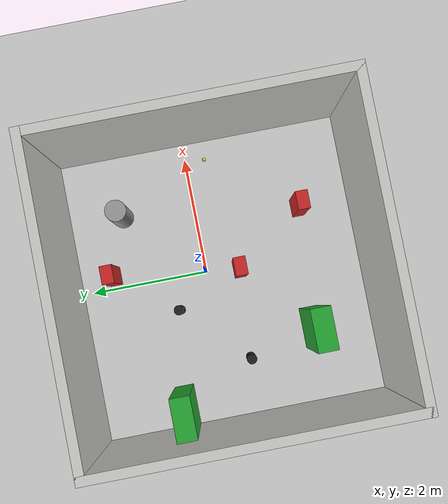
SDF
<sdf version="1.7">
 <world name="default">
  <light name="sun" type="directional">
   <pose>0 0 10 0 -0 0</pose>
   <diffuse>0.8 0.8 0.8 1</diffuse>
   <specular>0.2 0.2 0.2 1</specular>
   <attenuation>
    <range>1000</range>
    <constant>0.9</constant>
    <linear>0.01</linear>
    <quadratic>0.001</quadratic>
   </attenuation>
   <direction>-0.5 0.1 -0.9</direction>
   <spot><inner_angle>0</inner_angle><outer_angle>0</outer_angle><falloff>0</falloff></spot>
  </light>
  <model name="ground_plane">
   <static>1</static>
   <link name="link">
    <collision name="collision">
     <geometry><plane><normal>0 0 1</normal><size>100 100</size></plane></geometry>
     <surface>
      <contact><collide_bitmask>65535</collide_bitmask></contact>
      <friction><ode><mu>100</mu><mu2>50</mu2></ode></friction>
     </surface>
    </collision>
    <visual name="visual">
     <cast_shadows>0</cast_shadows>
     <geometry><plane><normal>0 0 1</normal><size>100 100</size></plane></geometry>
     <material>
      <script><uri>file://media/materials/scripts/gazebo.material</uri><name>Gazebo/Grey</name></script>
     </material>
    </visual>
   </link>
  </model>
  <gravity>0 0 -9.8</gravity>
  <magnetic_field>6e-06 2.3e-05 -4.2e-05</magnetic_field>
  <atmosphere type="adiabatic"/>
  <physics type="ode">
   <max_step_size>0.001</max_step_size>
   <real_time_factor>1</real_time_factor>
   <real_time_update_rate>1000</real_time_update_rate>
  </physics>
  <scene><ambient>0.4 0.4 0.4 1</ambient><background>0.7 0.7 0.7 1</background><shadows>1</shadows></scene>
  <audio><device>default</device></audio>
  <spherical_coordinates>
   <surface_model>EARTH_WGS84</surface_model>
   <latitude_deg>0</latitude_deg>
   <longitude_deg>0</longitude_deg>
   <elevation>0</elevation>
   <heading_deg>0</heading_deg>
  </spherical_coordinates>
  <model name="5x5_room">
   <pose>-0.145193 -0.25205 0 0 -0 0</pose>
   <link name="Wall_0">
    <collision name="Wall_0_Collision">
     <geometry><box><size>5.15 0.15 2.5</size></box></geometry>
     <pose>0 0 1.25 0 -0 0</pose>
    </collision>
    <visual name="Wall_0_Visual">
     <pose>0 0 1.25 0 -0 0</pose>
     <geometry><box><size>5.15 0.15 2.5</size></box></geometry>
     <material>
      <script><uri>file://media/materials/scripts/gazebo.material</uri><name>Gazebo/CeilingTiled</name></script>
      <ambient>1 1 1 1</ambient>
     </material>
     <meta><layer>0</layer></meta>
    </visual>
    <pose>0 -2.5 0 0 -0 3.14159</pose>
   </link>
   <link name="Wall_2">
    <collision name="Wall_2_Collision">
     <geometry><box><size>5.15 0.15 2.5</size></box></geometry>
     <pose>0 0 1.25 0 -0 0</pose>
    </collision>
    <visual name="Wall_2_Visual">
     <pose>0 0 1.25 0 -0 0</pose>
     <geometry><box><size>5.15 0.15 2.5</size></box></geometry>
     <material>
      <script><uri>file://media/materials/scripts/gazebo.material</uri><name>Gazebo/CeilingTiled</name></script>
      <ambient>1 1 1 1</ambient>
     </material>
     <meta><layer>0</layer></meta>
    </visual>
    <pose>2.5 0 0 0 -0 1.5708</pose>
   </link>
   <link name="Wall_3">
    <collision name="Wall_3_Collision">
     <geometry><box><size>5.15 0.15 2.5</size></box></geometry>
     <pose>0 0 1.25 0 -0 0</pose>
    </collision>
    <visual name="Wall_3_Visual">
     <pose>0 0 1.25 0 -0 0</pose>
     <geometry><box><size>5.15 0.15 2.5</size></box></geometry>
     <material>
      <script><uri>file://media/materials/scripts/gazebo.material</uri><name>Gazebo/CeilingTiled</name></script>
      <ambient>1 1 1 1</ambient>
     </material>
     <meta><layer>0</layer></meta>
    </visual>
    <pose>0 2.5 0 0 -0 3.14159</pose>
   </link>
   <link name="Wall_4">
    <collision name="Wall_4_Collision">
     <geometry><box><size>5.15 0.15 2.5</size></box></geometry>
     <pose>0 0 1.25 0 -0 0</pose>
    </collision>
    <visual name="Wall_4_Visual">
     <pose>0 0 1.25 0 -0 0</pose>
     <geometry><box><size>5.15 0.15 2.5</size></box></geometry>
     <material>
      <script><uri>file://media/materials/scripts/gazebo.material</uri><name>Gazebo/CeilingTiled</name></script>
      <ambient>1 1 1 1</ambient>
     </material>
     <meta><layer>0</layer></meta>
    </visual>
    <pose>-2.5 0 0 0 -0 -1.5708</pose>
   </link>
   <static>1</static>
  </model>
  <model name="yellow_ball">
   <link name="link">
    <inertial>
     <mass>1</mass>
     <inertia><ixx>0.1</ixx><ixy>0</ixy><ixz>0</ixz><iyy>0.1</iyy><iyz>0</iyz><izz>0.1</izz></inertia>
    </inertial>
    <visual name="visual">
     <geometry><sphere><radius>0.033</radius></sphere></geometry>
     <material>
      <script><name>Gazebo/Yellow</name><uri>file://media/materials/scripts/gazebo.material</uri></script>
      <shader type="pixel"><normal_map>__default__</normal_map></shader>
      <ambient>1 1 0 1</ambient>
      <diffuse>1 1 0 1</diffuse>
      <emissive>0 0 0 1</emissive>
     </material>
    </visual>
    <collision name="collision">
     <geometry><sphere><radius>0.033</radius></sphere></geometry>
     <surface>
      <friction>
       <ode><mu>1</mu><mu2>1</mu2><fdir1>0 0 0</fdir1><slip1>0</slip1><slip2>0</slip2></ode>
       <torsional>
        <coefficient>1</coefficient>
        <patch_radius>0</patch_radius>
        <surface_radius>0</surface_radius>
        <use_patch_radius>1</use_patch_radius>
        <ode><slip>0</slip></ode>
       </torsional>
      </friction>
      <bounce><restitution_coefficient>0</restitution_coefficient><threshold>1e+06</threshold></bounce>
      <contact>
       <collide_without_contact>0</collide_without_contact>
       <collide_without_contact_bitmask>1</collide_without_contact_bitmask>
       <collide_bitmask>1</collide_bitmask>
       <ode>
        <soft_cfm>0</soft_cfm>
        <soft_erp>0.2</soft_erp>
        <kp>1e+13</kp>
        <kd>1</kd>
        <max_vel>0.01</max_vel>
        <min_depth>0</min_depth>
       </ode>
       <bullet>
        <split_impulse>1</split_impulse>
        <split_impulse_penetration_threshold>-0.01</split_impulse_penetration_threshold>
        <soft_cfm>0</soft_cfm>
        <soft_erp>0.2</soft_erp>
        <kp>1e+13</kp>
        <kd>1</kd>
       </bullet>
      </contact>
     </surface>
    </collision>
   </link>
   <static>0</static>
   <pose>1.95071 -0.341292 0.033 0 -0 0</pose>
  </model>
  <model name="red_obstical_0_0">
   <link name="link_2">
    <inertial>
     <mass>100.062</mass>
     <inertia><ixx>8.68359</ixx><ixy>0</ixy><ixz>0</ixz><iyy>9.12058</iyy><iyz>0</iyz><izz>1.12713</izz></inertia>
    </inertial>
    <pose>-1.22537 -3.17223 0.5 0 -0 0</pose>
    <visual name="visual">
     <geometry><box><size>0.306249 0.203427 1</size></box></geometry>
     <material>
      <lighting>1</lighting>
      <script><uri>file://media/materials/scripts/gazebo.material</uri><name>Gazebo/Red</name></script>
      <shader type="pixel"><normal_map>__default__</normal_map></shader>
      <ambient>1 0 0 1</ambient>
      <diffuse>1 0 0 1</diffuse>
      <specular>0.1 0.1 0.1 1</specular>
      <emissive>0 0 0 1</emissive>
     </material>
    </visual>
    <collision name="collision">
     <geometry><box><size>0.306249 0.203427 1</size></box></geometry>
     <surface>
      <friction>
       <ode><mu>1</mu><mu2>1</mu2><fdir1>0 0 0</fdir1><slip1>0</slip1><slip2>0</slip2></ode>
       <torsional>
        <coefficient>1</coefficient>
        <patch_radius>0</patch_radius>
        <surface_radius>0</surface_radius>
        <use_patch_radius>1</use_patch_radius>
        <ode><slip>0</slip></ode>
       </torsional>
      </friction>
      <bounce><restitution_coefficient>0</restitution_coefficient><threshold>1e+06</threshold></bounce>
      <contact>
       <collide_without_contact>0</collide_without_contact>
       <collide_without_contact_bitmask>1</collide_without_contact_bitmask>
       <collide_bitmask>1</collide_bitmask>
       <ode>
        <soft_cfm>0</soft_cfm>
        <soft_erp>0.2</soft_erp>
        <kp>1e+13</kp>
        <kd>1</kd>
        <max_vel>0.01</max_vel>
        <min_depth>0</min_depth>
       </ode>
       <bullet>
        <split_impulse>1</split_impulse>
        <split_impulse_penetration_threshold>-0.01</split_impulse_penetration_threshold>
        <soft_cfm>0</soft_cfm>
        <soft_erp>0.2</soft_erp>
        <kp>1e+13</kp>
        <kd>1</kd>
       </bullet>
      </contact>
     </surface>
    </collision>
   </link>
   <static>0</static>
   <pose>2.03549 1.39121 -7e-06 -1e-06 3e-06 -0.001068</pose>
  </model>
  <model name="red_obstical_0_1">
   <link name="link_2">
    <inertial>
     <mass>100.062</mass>
     <inertia><ixx>8.68359</ixx><ixy>0</ixy><ixz>0</ixz><iyy>9.12058</iyy><iyz>0</iyz><izz>1.12713</izz></inertia>
    </inertial>
    <pose>-1.22537 -3.17223 0.5 0 -0 0</pose>
    <visual name="visual">
     <geometry><box><size>0.306249 0.203427 1</size></box></geometry>
     <material>
      <lighting>1</lighting>
      <script><uri>file://media/materials/scripts/gazebo.material</uri><name>Gazebo/Red</name></script>
      <shader type="pixel"><normal_map>__default__</normal_map></shader>
      <ambient>1 0 0 1</ambient>
      <diffuse>1 0 0 1</diffuse>
      <specular>0.1 0.1 0.1 1</specular>
      <emissive>0 0 0 1</emissive>
     </material>
    </visual>
    <collision name="collision">
     <geometry><box><size>0.306249 0.203427 1</size></box></geometry>
     <surface>
      <friction>
       <ode><mu>1</mu><mu2>1</mu2><fdir1>0 0 0</fdir1><slip1>0</slip1><slip2>0</slip2></ode>
       <torsional>
        <coefficient>1</coefficient>
        <patch_radius>0</patch_radius>
        <surface_radius>0</surface_radius>
        <use_patch_radius>1</use_patch_radius>
        <ode><slip>0</slip></ode>
       </torsional>
      </friction>
      <bounce><restitution_coefficient>0</restitution_coefficient><threshold>1e+06</threshold></bounce>
      <contact>
       <collide_without_contact>0</collide_without_contact>
       <collide_without_contact_bitmask>1</collide_without_contact_bitmask>
       <collide_bitmask>1</collide_bitmask>
       <ode>
        <soft_cfm>0</soft_cfm>
        <soft_erp>0.2</soft_erp>
        <kp>1e+13</kp>
        <kd>1</kd>
        <max_vel>0.01</max_vel>
        <min_depth>0</min_depth>
       </ode>
       <bullet>
        <split_impulse>1</split_impulse>
        <split_impulse_penetration_threshold>-0.01</split_impulse_penetration_threshold>
        <soft_cfm>0</soft_cfm>
        <soft_erp>0.2</soft_erp>
        <kp>1e+13</kp>
        <kd>1</kd>
       </bullet>
      </contact>
     </surface>
    </collision>
   </link>
   <static>0</static>
   <pose>1.44355 4.75053 -1e-06 1e-06 3e-06 0.000179</pose>
  </model>
  <model name="red_obstical_0_2">
   <link name="link_2">
    <inertial>
     <mass>100.062</mass>
     <inertia><ixx>8.68359</ixx><ixy>0</ixy><ixz>0</ixz><iyy>9.12058</iyy><iyz>0</iyz><izz>1.12713</izz></inertia>
    </inertial>
    <pose>-1.22537 -3.17223 0.5 0 -0 0</pose>
    <visual name="visual">
     <geometry><box><size>0.306249 0.203427 1</size></box></geometry>
     <material>
      <lighting>1</lighting>
      <script><uri>file://media/materials/scripts/gazebo.material</uri><name>Gazebo/Red</name></script>
      <shader type="pixel"><normal_map>__default__</normal_map></shader>
      <ambient>1 0 0 1</ambient>
      <diffuse>1 0 0 1</diffuse>
      <specular>0.1 0.1 0.1 1</specular>
      <emissive>0 0 0 1</emissive>
     </material>
    </visual>
    <collision name="collision">
     <geometry><box><size>0.306249 0.203427 1</size></box></geometry>
     <surface>
      <friction>
       <ode><mu>1</mu><mu2>1</mu2><fdir1>0 0 0</fdir1><slip1>0</slip1><slip2>0</slip2></ode>
       <torsional>
        <coefficient>1</coefficient>
        <patch_radius>0</patch_radius>
        <surface_radius>0</surface_radius>
        <use_patch_radius>1</use_patch_radius>
        <ode><slip>0</slip></ode>
       </torsional>
      </friction>
      <bounce><restitution_coefficient>0</restitution_coefficient><threshold>1e+06</threshold></bounce>
      <contact>
       <collide_without_contact>0</collide_without_contact>
       <collide_without_contact_bitmask>1</collide_without_contact_bitmask>
       <collide_bitmask>1</collide_bitmask>
       <ode>
        <soft_cfm>0</soft_cfm>
        <soft_erp>0.2</soft_erp>
        <kp>1e+13</kp>
        <kd>1</kd>
        <max_vel>0.01</max_vel>
        <min_depth>0</min_depth>
       </ode>
       <bullet>
        <split_impulse>1</split_impulse>
        <split_impulse_penetration_threshold>-0.01</split_impulse_penetration_threshold>
        <soft_cfm>0</soft_cfm>
        <soft_erp>0.2</soft_erp>
        <kp>1e+13</kp>
        <kd>1</kd>
       </bullet>
      </contact>
     </surface>
    </collision>
   </link>
   <static>0</static>
   <pose>1.16375 2.5944 1.4e-05 3e-06 -3e-06 0.00102</pose>
  </model>
  <model name="green_obstical">
   <link name="link_1">
    <inertial>
     <mass>100.358</mass>
     <inertia><ixx>21.465</ixx><ixy>0</ixy><ixz>0</ixz><iyy>24.5919</iyy><iyz>0</iyz><izz>4.93873</izz></inertia>
    </inertial>
    <pose>-0.043498 0.071692 -0 0 -0 0</pose>
    <visual name="visual">
     <geometry><box><size>0.694411 0.329127 1.56789</size></box></geometry>
     <material>
      <lighting>1</lighting>
      <script><uri>file://media/materials/scripts/gazebo.material</uri><name>Gazebo/Green</name></script>
      <shader type="pixel"><normal_map>__default__</normal_map></shader>
      <ambient>0 1 0 1</ambient>
      <diffuse>0 1 0 1</diffuse>
      <specular>0.1 0.1 0.1 1</specular>
      <emissive>0 0 0 1</emissive>
     </material>
    </visual>
    <collision name="collision">
     <geometry><box><size>0.694411 0.329127 1.56789</size></box></geometry>
     <surface>
      <friction>
       <ode><mu>1</mu><mu2>1</mu2><fdir1>0 0 0</fdir1><slip1>0</slip1><slip2>0</slip2></ode>
       <torsional>
        <coefficient>1</coefficient>
        <patch_radius>0</patch_radius>
        <surface_radius>0</surface_radius>
        <use_patch_radius>1</use_patch_radius>
        <ode><slip>0</slip></ode>
       </torsional>
      </friction>
      <bounce><restitution_coefficient>0</restitution_coefficient><threshold>1e+06</threshold></bounce>
      <contact>
       <collide_without_contact>0</collide_without_contact>
       <collide_without_contact_bitmask>1</collide_without_contact_bitmask>
       <collide_bitmask>1</collide_bitmask>
       <ode>
        <soft_cfm>0</soft_cfm>
        <soft_erp>0.2</soft_erp>
        <kp>1e+13</kp>
        <kd>1</kd>
        <max_vel>0.01</max_vel>
        <min_depth>0</min_depth>
       </ode>
       <bullet>
        <split_impulse>1</split_impulse>
        <split_impulse_penetration_threshold>-0.01</split_impulse_penetration_threshold>
        <soft_cfm>0</soft_cfm>
        <soft_erp>0.2</soft_erp>
        <kp>1e+13</kp>
        <kd>1</kd>
       </bullet>
      </contact>
     </surface>
    </collision>
   </link>
   <static>0</static>
   <pose>-1.24629 -1.70808 0.783944 2e-06 -3e-06 -0.000435</pose>
  </model>
  <model name="green_obstical_0">
   <link name="link_1">
    <inertial>
     <mass>100.358</mass>
     <inertia><ixx>21.465</ixx><ixy>0</ixy><ixz>0</ixz><iyy>24.5919</iyy><iyz>0</iyz><izz>4.93873</izz></inertia>
    </inertial>
    <pose>-0.043498 0.071692 -0 0 -0 0</pose>
    <visual name="visual">
     <geometry><box><size>0.694411 0.329127 1.56789</size></box></geometry>
     <material>
      <lighting>1</lighting>
      <script><uri>file://media/materials/scripts/gazebo.material</uri><name>Gazebo/Green</name></script>
      <shader type="pixel"><normal_map>__default__</normal_map></shader>
      <ambient>0 1 0 1</ambient>
      <diffuse>0 1 0 1</diffuse>
      <specular>0.1 0.1 0.1 1</specular>
      <emissive>0 0 0 1</emissive>
     </material>
    </visual>
    <collision name="collision">
     <geometry><box><size>0.694411 0.329127 1.56789</size></box></geometry>
     <surface>
      <friction>
       <ode><mu>1</mu><mu2>1</mu2><fdir1>0 0 0</fdir1><slip1>0</slip1><slip2>0</slip2></ode>
       <torsional>
        <coefficient>1</coefficient>
        <patch_radius>0</patch_radius>
        <surface_radius>0</surface_radius>
        <use_patch_radius>1</use_patch_radius>
        <ode><slip>0</slip></ode>
       </torsional>
      </friction>
      <bounce><restitution_coefficient>0</restitution_coefficient><threshold>1e+06</threshold></bounce>
      <contact>
       <collide_without_contact>0</collide_without_contact>
       <collide_without_contact_bitmask>1</collide_without_contact_bitmask>
       <collide_bitmask>1</collide_bitmask>
       <ode>
        <soft_cfm>0</soft_cfm>
        <soft_erp>0.2</soft_erp>
        <kp>1e+13</kp>
        <kd>1</kd>
        <max_vel>0.01</max_vel>
        <min_depth>0</min_depth>
       </ode>
       <bullet>
        <split_impulse>1</split_impulse>
        <split_impulse_penetration_threshold>-0.01</split_impulse_penetration_threshold>
        <soft_cfm>0</soft_cfm>
        <soft_erp>0.2</soft_erp>
        <kp>1e+13</kp>
        <kd>1</kd>
       </bullet>
      </contact>
     </surface>
    </collision>
   </link>
   <static>0</static>
   <pose>-2.17931 0.681788 0.783945 -1e-06 -0 -0.000274</pose>
  </model>
  <model name="brown_obstical">
   <link name="link_3">
    <inertial>
     <mass>100.127</mass>
     <inertia><ixx>9.13759</ixx><ixy>0</ixy><ixz>0</ixz><iyy>9.13759</iyy><iyz>0</iyz><izz>1.58737</izz></inertia>
    </inertial>
    <pose>-0.039255 -0.220189 -0 0 -0 0</pose>
    <visual name="visual">
     <geometry><cylinder><radius>0.178065</radius><length>1</length></cylinder></geometry>
     <material>
      <lighting>1</lighting>
      <script><uri>file://media/materials/scripts/gazebo.material</uri><name>Gazebo/Grey</name></script>
      <shader type="pixel"><normal_map>__default__</normal_map></shader>
      <ambient>0 0 0 1</ambient>
      <diffuse>0 0 0 1</diffuse>
      <specular>0 0 0 1</specular>
      <emissive>0 0 0 1</emissive>
     </material>
    </visual>
    <collision name="collision">
     <geometry><cylinder><radius>0.178065</radius><length>1</length></cylinder></geometry>
     <surface>
      <friction>
       <ode><mu>1</mu><mu2>1</mu2><fdir1>0 0 0</fdir1><slip1>0</slip1><slip2>0</slip2></ode>
       <torsional>
        <coefficient>1</coefficient>
        <patch_radius>0</patch_radius>
        <surface_radius>0</surface_radius>
        <use_patch_radius>1</use_patch_radius>
        <ode><slip>0</slip></ode>
       </torsional>
      </friction>
      <bounce><restitution_coefficient>0</restitution_coefficient><threshold>1e+06</threshold></bounce>
      <contact>
       <collide_without_contact>0</collide_without_contact>
       <collide_without_contact_bitmask>1</collide_without_contact_bitmask>
       <collide_bitmask>1</collide_bitmask>
       <ode>
        <soft_cfm>0</soft_cfm>
        <soft_erp>0.2</soft_erp>
        <kp>1e+13</kp>
        <kd>1</kd>
        <max_vel>0.01</max_vel>
        <min_depth>0</min_depth>
       </ode>
       <bullet>
        <split_impulse>1</split_impulse>
        <split_impulse_penetration_threshold>-0.01</split_impulse_penetration_threshold>
        <soft_cfm>0</soft_cfm>
        <soft_erp>0.2</soft_erp>
        <kp>1e+13</kp>
        <kd>1</kd>
       </bullet>
      </contact>
     </surface>
    </collision>
   </link>
   <static>0</static>
   <pose>1.25026 1.46482 0.499999 0 -0 1e-06</pose>
  </model>
  <model name="black_obstical">
   <link name="link_4">
    <inertial>
     <mass>100.017</mass>
     <inertia><ixx>3.38827</ixx><ixy>0</ixy><ixz>0</ixz><iyy>3.38827</iyy><iyz>0</iyz><izz>0.335387</izz></inertia>
    </inertial>
    <pose>-1.13449 -3.02892 0.5 0 -0 0</pose>
    <visual name="visual">
     <geometry><cylinder><radius>0.0818937</radius><length>0.621615</length></cylinder></geometry>
     <material>
      <lighting>1</lighting>
      <script><uri>file://media/materials/scripts/gazebo.material</uri><name>Gazebo/Black</name></script>
      <shader type="pixel"><normal_map>__default__</normal_map></shader>
      <ambient>0 0 0 1</ambient>
      <diffuse>0 0 0 1</diffuse>
      <specular>0.1 0.1 0.1 1</specular>
      <emissive>0 0 0 1</emissive>
     </material>
    </visual>
    <collision name="collision">
     <geometry><cylinder><radius>0.081894</radius><length>0.621615</length></cylinder></geometry>
     <surface>
      <friction>
       <ode><mu>1</mu><mu2>1</mu2><fdir1>0 0 0</fdir1><slip1>0</slip1><slip2>0</slip2></ode>
       <torsional>
        <coefficient>1</coefficient>
        <patch_radius>0</patch_radius>
        <surface_radius>0</surface_radius>
        <use_patch_radius>1</use_patch_radius>
        <ode><slip>0</slip></ode>
       </torsional>
      </friction>
      <bounce><restitution_coefficient>0</restitution_coefficient><threshold>1e+06</threshold></bounce>
      <contact>
       <collide_without_contact>0</collide_without_contact>
       <collide_without_contact_bitmask>1</collide_without_contact_bitmask>
       <collide_bitmask>1</collide_bitmask>
       <ode>
        <soft_cfm>0</soft_cfm>
        <soft_erp>0.2</soft_erp>
        <kp>1e+13</kp>
        <kd>1</kd>
        <max_vel>0.01</max_vel>
        <min_depth>0</min_depth>
       </ode>
       <bullet>
        <split_impulse>1</split_impulse>
        <split_impulse_penetration_threshold>-0.01</split_impulse_penetration_threshold>
        <soft_cfm>0</soft_cfm>
        <soft_erp>0.2</soft_erp>
        <kp>1e+13</kp>
        <kd>1</kd>
       </bullet>
      </contact>
     </surface>
    </collision>
   </link>
   <static>0</static>
   <pose>-0.46784 2.54693 -0.189199 0 -0 0</pose>
  </model>
  <model name="black_obstical_0">
   <link name="link_4">
    <inertial>
     <mass>100.017</mass>
     <inertia><ixx>3.38827</ixx><ixy>0</ixy><ixz>0</ixz><iyy>3.38827</iyy><iyz>0</iyz><izz>0.335387</izz></inertia>
    </inertial>
    <pose>-1.13449 -3.02892 0.5 0 -0 0</pose>
    <visual name="visual">
     <geometry><cylinder><radius>0.0818937</radius><length>0.621615</length></cylinder></geometry>
     <material>
      <lighting>1</lighting>
      <script><uri>file://media/materials/scripts/gazebo.material</uri><name>Gazebo/Black</name></script>
      <shader type="pixel"><normal_map>__default__</normal_map></shader>
      <ambient>0 0 0 1</ambient>
      <diffuse>0 0 0 1</diffuse>
      <specular>0.1 0.1 0.1 1</specular>
      <emissive>0 0 0 1</emissive>
     </material>
    </visual>
    <collision name="collision">
     <geometry><cylinder><radius>0.081894</radius><length>0.621615</length></cylinder></geometry>
     <surface>
      <friction>
       <ode><mu>1</mu><mu2>1</mu2><fdir1>0 0 0</fdir1><slip1>0</slip1><slip2>0</slip2></ode>
       <torsional>
        <coefficient>1</coefficient>
        <patch_radius>0</patch_radius>
        <surface_radius>0</surface_radius>
        <use_patch_radius>1</use_patch_radius>
        <ode><slip>0</slip></ode>
       </torsional>
      </friction>
      <bounce><restitution_coefficient>0</restitution_coefficient><threshold>1e+06</threshold></bounce>
      <contact>
       <collide_without_contact>0</collide_without_contact>
       <collide_without_contact_bitmask>1</collide_without_contact_bitmask>
       <collide_bitmask>1</collide_bitmask>
       <ode>
        <soft_cfm>0</soft_cfm>
        <soft_erp>0.2</soft_erp>
        <kp>1e+13</kp>
        <kd>1</kd>
        <max_vel>0.01</max_vel>
        <min_depth>0</min_depth>
       </ode>
       <bullet>
        <split_impulse>1</split_impulse>
        <split_impulse_penetration_threshold>-0.01</split_impulse_penetration_threshold>
        <soft_cfm>0</soft_cfm>
        <soft_erp>0.2</soft_erp>
        <kp>1e+13</kp>
        <kd>1</kd>
       </bullet>
      </contact>
     </surface>
    </collision>
   </link>
   <static>0</static>
   <pose>0.564155 3.59026 -0.189199 0 -0 0</pose>
  </model>
 </world>
</sdf>
